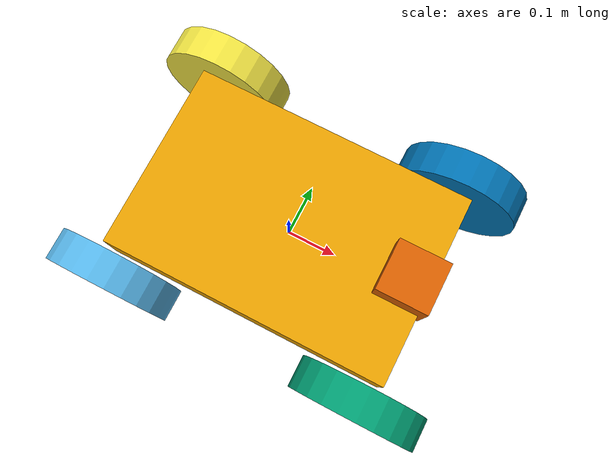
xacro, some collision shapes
<?xml version='1.0'?>

<robot name="luna_rover" xmlns:xacro="http://www.ros.org/wiki/xacro">
	<xacro:property name="robot_name" value="luna_rover" />
	<xacro:property name="robot_chassis_mass" value="15"/>
	<xacro:property name="robot_chassis_length" value="0.2"/>
	<xacro:property name="robot_chassis_radius" value="0.25"/>
	<xacro:property name="robot_caster_wheel_radius" value="0.05"/>
	<xacro:property name="robot_caster_wheel_radius_collision" value="0.0499"/>

	<xacro:property name="robot_wheel_mass" value="5"/>
	<xacro:property name="robot_wheel_length" value="0.05"/>
	<xacro:property name="robot_wheel_radius" value="0.1"/>

	<xacro:property name="camera_mass" value="0.1"/>
	<xacro:property name="hokoyu_mass" value="1e-5"/>

	<!-- Make Chassis of Bot -->
	<link name="chassis">
		<pose>0 0 0.1 0 0 0</pose>

		<inertial>
			<mass value="35"/>
      		<origin xyz="0.0 0 0" rpy=" 0 0 0"/>

      		<inertia
      			ixx="0.944" ixy="0" ixz="0"
      			iyy="0.439" iyz="0"
      			izz="1.325"
      		/>
		</inertial>

		<collision name="collision">
			<origin xyz="0 0 0.05" rpy=" 0 0 0"/>
			<geometry>
				<box size="0.56 0.375 0.1"/>
			</geometry>
		</collision>

		<visual name="chassis_visual">
			<origin xyz="0 0 0.05" rpy=" 0 0 0"/>
			<geometry>
				<box size="0.56 0.375 0.1"/>
			</geometry>

		</visual>

	</link>

	<!-- Right Wheel Back -->
	<link name="right_wheel_back">
		<inertial>
			<mass value="0.5"/>
			<origin xyz="0 0 0" rpy="0 1.5705 1.5707"/>
			<inertia
				ixx="0.00219" ixy="0.0" ixz="0.0"
				iyy="0.00219" iyz="0.0"
				izz="0.00403"
			/>
		</inertial>

		<visual>
			<origin xyz="0 0 0" rpy="0 1.5707 1.5707"/>
			<geometry>
				<cylinder radius="0.127" length="0.064"/>
			</geometry>
		</visual>

		<collision>
			<origin xyz="0 0 0" rpy="0 1.5707 1.5707"/>
			<geometry>
				<cylinder radius="0.127" length="0.064"/>
			</geometry>
		</collision>

	</link>

	<!-- Right Wheel Front-->
	<link name="right_wheel_front">
		<inertial>
			<mass value="0.5"/>
			<origin xyz="0 0 0" rpy="0 1.5707 1.5707"/>
			<inertia
				ixx="0.00219" ixy="0.0" ixz="0.0"
				iyy="0.00219" iyz="0.0"
				izz="0.00403"
			/>
		</inertial>

		<visual>
			<origin xyz="0 0 0" rpy="0 1.5707 1.5707"/>
			<geometry>
				<cylinder radius="0.127" length="0.064"/>
			</geometry>
		</visual>

		<collision>
			<origin xyz="0 0 0" rpy="0 1.5707 1.5707"/>
			<geometry>
				<cylinder radius="0.127" length="0.064"/>
			</geometry>
		</collision>

	</link>

	<!-- Left wheel Back-->
	<link name="left_wheel_back">
		<inertial>
			<mass value="0.5"/>
			<origin xyz="0 0 0" rpy="0 1.5707 1.5707"/>
			<inertia
				ixx="0.00219" ixy="0.0" ixz="0.0"
				iyy="0.00219" iyz="0.0"
				izz="0.00403"
			/>
		</inertial>

		<visual>
			<origin xyz="0 0 0" rpy="0 1.5707 1.5707"/>
			<geometry>
				<cylinder radius="0.127" length="0.064"/>
			</geometry>
		</visual>

		<collision>
			<origin xyz="0 0 0" rpy="0 1.5707 1.5707"/>
			<geometry>
				<cylinder radius="0.127" length="0.064"/>
			</geometry>
		</collision>

	</link>

	<!-- Left wheel Front-->
	<link name="left_wheel_front">
		<inertial>
			<mass value="0.5"/>
			<origin xyz="0 0 0" rpy="0 1.5707 1.5707"/>
			<inertia
				ixx="0.00219" ixy="0.0" ixz="0.0"
				iyy="0.00219" iyz="0.0"
				izz="0.00403"
			/>
		</inertial>

		<visual>
			<origin xyz="0 0 0" rpy="0 1.5707 1.5707"/>
			<geometry>
				<cylinder radius="0.127" length="0.064"/>
			</geometry>
		</visual>

		<collision>
			<origin xyz="0 0 0" rpy="0 1.5707 1.5707"/>
			<geometry>
				<cylinder radius="0.127" length="0.064"/>
			</geometry>
		</collision>

	</link>

	<!-- Hokuyo Lidar -->
	<link name="hokuyo">
		<inertial>
			<mass value="1e-5"/>
			<origin xyz="0 0 0" rpy="0 0 0"/>

			<inertia
		        ixx="1e-6" ixy="0.0" ixz="0.0"
		        iyy="1e-6" iyz="0.0"
		        izz="1e-6"
		      />
		</inertial>

		<visual>
			<origin xyz="0 0 0" rpy="0 0 0"/>
			<geometry>
				<mesh filename="package://atom/meshes/hokuyo.dae"/>
			</geometry>
		</visual>

		<collision>
			<origin xyz="0 0 0" rpy="0 0 0"/>
			<geometry>
				<box size="0.1 0.1 0.1"/>
			</geometry>
		</collision>
	</link>

	<!-- Camera -->
	<link name="camera">
		<inertial>
			<mass value="0.1"/>
			<origin xyz="0 0 0" rpy="0 0 0"/>
			<inertia
		        ixx="1e-6" ixy="0.0" ixz="0.0"
		        iyy="1e-6" iyz="0.0"
		        izz="1e-6"
		      />
		</inertial>

		<visual>
			<origin xyz="0 0 0" rpy="0 0 0"/>
			<geometry>
				<box size="0.05 0.05 0.05"/>
			</geometry>
		</visual>

		<collision>
			<origin xyz="0 0 0" rpy="0 0 0"/>
			<geometry>
				<box size="0.05 0.05 0.05"/>
			</geometry>
		</collision>
	</link>

	<!-- Project center to the ground -->
	<link name="robot_footprint"></link>

	<!-- Define Joints -->

	<!-- Right Wheel Joint Back-->
	<joint type="continuous" name="right_wheel_hinge_back">
	    <origin xyz="-0.26 -0.23 0" rpy="0 0 0" />
	    <parent link="chassis"/>
	    <child link="right_wheel_back" />
	    <axis xyz="0 1 0" rpy="0 0 0" />
	    <limit effort="10000" velocity="1000" />
	    <dynamics damping="1.0" friction="1.0" />
	</joint>

	<!-- Right Wheel Joint Front-->
	<joint type="continuous" name="right_wheel_hinge_front">
	    <origin xyz="0.26 -0.23 0" rpy="0 0 0" />
	    <parent link="chassis"/>
	    <child link="right_wheel_front" />
	    <axis xyz="0 1 0" rpy="0 0 0" />
	    <limit effort="10000" velocity="1000" />
	    <dynamics damping="1.0" friction="1.0" />
	</joint>

	<!-- Left Wheel Joint Back-->
	<joint type="continuous" name="left_wheel_hinge_back">
	    <origin xyz="-0.26 0.23 0" rpy="0 0 0" />
	    <parent link="chassis"/>
	    <child link="left_wheel_back" />
	    <axis xyz="0 1 0" rpy="0 0 0" />
	    <limit effort="10000" velocity="1000" />
	    <dynamics damping="1.0" friction="1.0" />
	</joint>

	<!-- Left Wheel Joint Front-->
	<joint type="continuous" name="left_wheel_hinge_front">
	    <origin xyz="0.26 0.23 0" rpy="0 0 0" />
	    <parent link="chassis"/>
	    <child link="left_wheel_front" />
	    <axis xyz="0 1 0" rpy="0 0 0" />
	    <limit effort="10000" velocity="1000" />
	    <dynamics damping="1.0" friction="1.0" />
	</joint>

	<!-- Camera Joint -->
	<joint name="camera_joint" type="fixed">
		<origin xyz="0.28 0 0" rpy="0 0 0" />
		<parent link="chassis"/>
		<child link="camera" />
		<axis xyz="0 1 0"/>
	</joint>

	<!-- Hokoyu Joint -->
	<joint name="hokuyo_joint" type="fixed">
	    <origin xyz="0.24 0 0.1" rpy="0 0 0" />
	    <parent link="chassis"/>
	    <child link="hokuyo" />
	    <axis xyz="0 1 0"/>
	</joint>

	<joint name="robot_footprint_joint" type="fixed">
		<origin xyz="0 0 0" rpy="0 0 0" />
		<parent link="robot_footprint"/>
		<child link="chassis" />
	</joint>

    <gazebo>
        <plugin name="skid_steer_drive_controller" filename="libgazebo_ros_skid_steer_drive.so">
            <updateRate>5</updateRate>
            <leftFrontJoint>left_wheel_hinge_front</leftFrontJoint>
            <rightFrontJoint>right_wheel_hinge_front</rightFrontJoint>
            <leftRearJoint>left_wheel_hinge_back</leftRearJoint>
            <rightRearJoint>right_wheel_hinge_back</rightRearJoint>
            <wheelSeparation>0.375</wheelSeparation>
            <wheelDiameter>0.254</wheelDiameter>
            <robotBaseFrame>robot_footprint</robotBaseFrame>
            <torque>100</torque>

            <topicName>cmd_vel</topicName>
            <odometryTopic>odom</odometryTopic>
            <odometryFrame>odom</odometryFrame>

            <commandTopic>cmd_vel</commandTopic>
            <topic_name_twist>cmd_vel</topic_name_twist>
            <topic_name_odometry>odom</topic_name_odometry>
            <topic_name_joint>joint</topic_name_joint>

            <broadcastTF>true</broadcastTF>

            <covariance_x>0.0001</covariance_x>
            <covariance_y>0.0001</covariance_y>
            <covariance_yaw>0.01</covariance_yaw>
        </plugin>
    </gazebo>

    <gazebo reference="camera">
        <sensor type="camera" name="camera1">
            <update_rate>10.0</update_rate>
            <camera name="head">
                <horizontal_fov>1.3962634</horizontal_fov>
                <image>
                    <width>800</width>
                    <height>800</height>
                    <format>R8G8B8</format>
                </image>
                <clip>
                    <near>0.02</near>
                    <far>300</far>
                </clip>
            </camera>
            <plugin name="camera_controller" filename="libgazebo_ros_camera.so">
                <robotNamespace>/luna_rover</robotNamespace>
                <alwaysOn>true</alwaysOn>
                <updateRate>0.0</updateRate>
                <cameraName>camera</cameraName>
                <imageTopicName>rgb/image_raw</imageTopicName>
                <cameraInfoTopicName>rgb/camera_info</cameraInfoTopicName>
                <frameName>camera</frameName>
                <hackBaseline>0.07</hackBaseline>
                <distortionK1>0.0</distortionK1>
                <distortionK2>0.0</distortionK2>
                <distortionK3>0.0</distortionK3>
                <distortionT1>0.0</distortionT1>
                <distortionT2>0.0</distortionT2>
            </plugin>
        </sensor>
    </gazebo>

    <!-- hokuyo -->
    <gazebo reference="hokuyo">
        <sensor type="ray" name="head_hokuyo_sensor">
            <pose>0 0 0 0 0 0</pose>
            <visualize>false</visualize>
            <update_rate>15</update_rate>
            <ray>
                <scan>
                    <horizontal>
                        <samples>720</samples>
                        <resolution>1</resolution>
                        <min_angle>-1.570796</min_angle>
                        <max_angle>1.570796</max_angle>
                    </horizontal>
                </scan>
                <range>
                    <min>0.10</min>
                    <max>30.0</max>
                    <resolution>0.01</resolution>
                </range>
                <noise>
                    <type>gaussian</type>
                    <mean>0.0</mean>
                    <stddev>0.01</stddev>
                </noise>
            </ray>
            <plugin name="gazebo_ros_head_hokuyo_controller" filename="libgazebo_ros_laser.so">
                <topicName>/scan</topicName>
                <frameName>hokuyo</frameName>
                <robotNamespace>/luna_rover</robotNamespace>
            </plugin>
        </sensor>
    </gazebo>

</robot>
